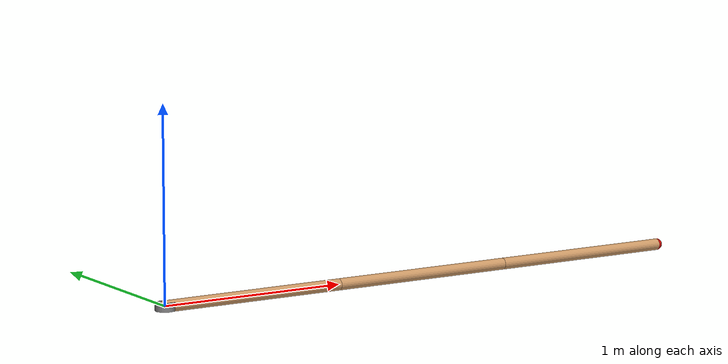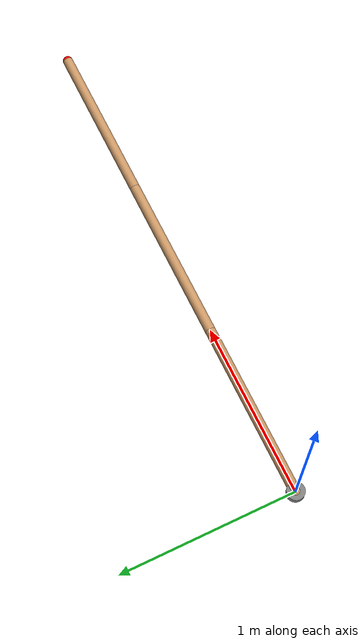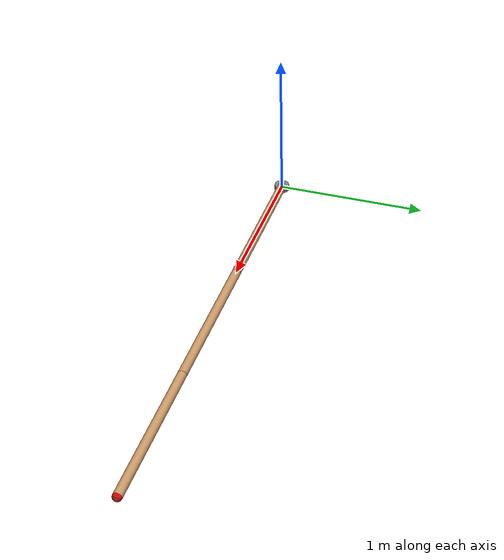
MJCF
<mujoco model="3dof_planar_arm">
  <compiler angle="radian" autolimits="true"/>

  <option timestep="0.002" integrator="RK4">
    <flag warmstart="enable"/>
  </option>

  <default>
    <joint type="hinge" axis="0 0 1" damping="0.05"/>
    <geom type="capsule" size="0.025" rgba="0.8 0.6 0.4 1"/>
    <site type="sphere" size="0.03" rgba="1 0 0 1"/>
  </default>

  <worldbody>
    <body name="base" pos="0 0 0">
      <inertial pos="0 0 0" mass="1" diaginertia="0.1 0.1 0.1"/>
      <geom type="cylinder" size="0.05 0.02" rgba="0.5 0.5 0.5 1"/>
      <!-- Link 1 -->
      <body name="link1" pos="0 0 0">
        <joint name="joint1" type="hinge" axis="0 0 1" pos="0 0 0" range="-3.14 3.14" damping="0.05"/>
        <geom fromto="0 0 0 1 0 0" size="0.03" rgba="0.8 0.6 0.4 1"/>
        <inertial pos="0.5 0 0" mass="1.0" diaginertia="0.01 0.01 0.01"/>
        <!-- Link 2 -->
        <body name="link2" pos="1 0 0">
          <joint name="joint2" type="hinge" axis="0 0 1" pos="0 0 0" range="-3.14 3.14" damping="0.05"/>
          <geom fromto="0 0 0 1 0 0" size="0.03" rgba="0.8 0.6 0.4 1"/>
          <inertial pos="0.5 0 0" mass="0.8" diaginertia="0.01 0.01 0.01"/>
          <!-- Link 3 -->
          <body name="link3" pos="1 0 0">
            <joint name="joint3" type="hinge" axis="0 0 1" pos="0 0 0" range="-3.14 3.14" damping="0.05"/>
            <geom fromto="0 0 0 1 0 0" size="0.03" rgba="0.8 0.6 0.4 1"/>
            <inertial pos="0.5 0 0" mass="0.6" diaginertia="0.01 0.01 0.01"/>
            <site name="end_effector" pos="1 0 0" rgba="1 0 0 1"/>
          </body>
        </body>
      </body>
    </body>
  </worldbody>

  <actuator>
    <motor joint="joint1" name="motor1" gear="1" ctrlrange="-100 100"/>
    <motor joint="joint2" name="motor2" gear="1" ctrlrange="-100 100"/>
    <motor joint="joint3" name="motor3" gear="1" ctrlrange="-100 100"/>
  </actuator>

  <sensor>
    <jointpos joint="joint1" name="joint1_pos"/>
    <jointpos joint="joint2" name="joint2_pos"/>
    <jointpos joint="joint3" name="joint3_pos"/>
    <jointvel joint="joint1" name="joint1_vel"/>
    <jointvel joint="joint2" name="joint2_vel"/>
    <jointvel joint="joint3" name="joint3_vel"/>
    <actuatorfrc actuator="motor1" name="motor1_force"/>
    <actuatorfrc actuator="motor2" name="motor2_force"/>
    <actuatorfrc actuator="motor3" name="motor3_force"/>
  </sensor>
</mujoco>
